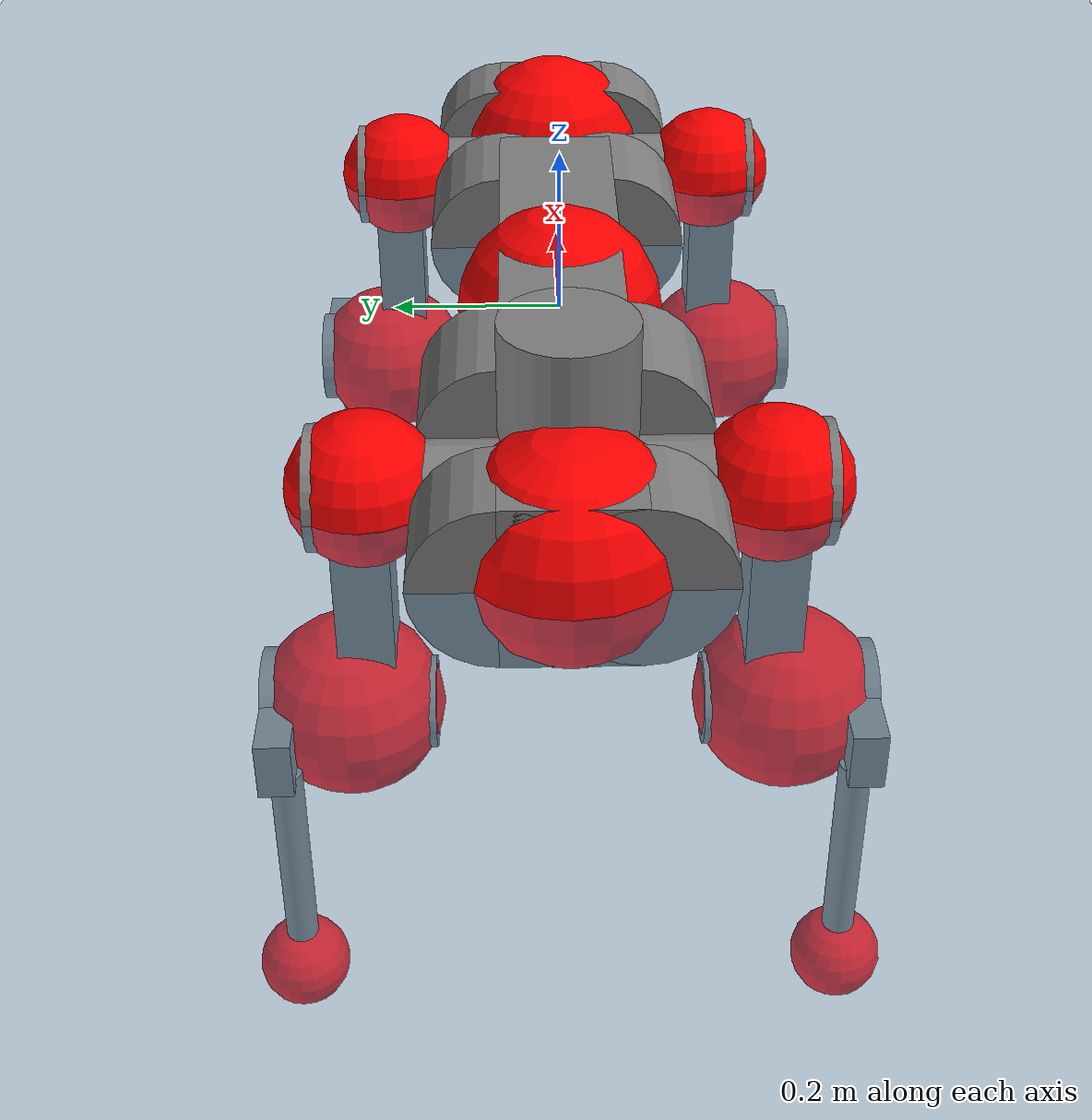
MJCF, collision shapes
<mujoco model="anymal_c">
  <compiler angle="radian" assetdir="assets" balanceinertia="true" inertiafromgeom="false"/>

  <option timestep="0.005" density="1.2" viscosity="2e-05"/>

  <size nkey="1"/>

  <visual>
    <quality shadowsize="8192"/>
    <map shadowclip="0.5"/>
  </visual>

  <default>
    <default class="/">
      <material specular="0" shininess="0.25"/>
      <geom contype="0" conaffinity="0" group="1" solref="-1000 -80"/>
      <site size="0.01 0.005 0.005" group="5"/>
      <general forcelimited="true" forcerange="-80 80" biastype="affine" gainprm="80" biasprm="0 -80 -2"/>
      <default class="anymal_c">
        <joint armature="0.01" damping="0.01" frictionloss="0.1"/>
        <default class="visual">
          <geom type="mesh" group="2"/>
          <default class="visual_zflip"/>
        </default>
        <default class="collision">
          <geom type="cylinder" group="3"/>
          <default class="foot">
            <geom size="0.03 0 0" type="sphere" condim="6" priority="1" friction="0.8 0.02 0.01" solimp="0.015 1 0.03"/>
          </default>
        </default>
      </default>
      <default class="reward_collision_sphere">
        <geom group="5" rgba="1 0 0 1"/>
      </default>
    </default>
  </default>

  <asset>
    <texture type="skybox" colorspace="auto" name="//unnamed_texture_0" builtin="gradient" rgb1="0.95 0.95 0.95" rgb2="0.95 0.95 0.95" width="100" height="600"/>
    <texture type="2d" colorspace="auto" name="texplane" builtin="checker" rgb1="0.345 0.575 0.748" rgb2="0.345 0.575 0.748" markrgb="1 1 1" width="512" height="512"/>
    <texture type="2d" colorspace="linear" name="base" file="base.png"/>
    <texture type="2d" colorspace="linear" name="top_shell" file="top_shell.png"/>
    <texture type="2d" colorspace="linear" name="bottom_shell" file="bottom_shell.png"/>
    <texture type="2d" colorspace="linear" name="remote" file="remote.png"/>
    <texture type="2d" colorspace="linear" name="hatch" file="hatch.png"/>
    <texture type="2d" colorspace="linear" name="handle" file="handle.png"/>
    <texture type="2d" colorspace="linear" name="face" file="face.png"/>
    <texture type="2d" colorspace="linear" name="battery" file="battery.png"/>
    <texture type="2d" colorspace="linear" name="lidar_cage" file="lidar_cage.png"/>
    <texture type="2d" colorspace="linear" name="depth_camera" file="depth_camera.png"/>
    <texture type="2d" colorspace="linear" name="wide_angle_camera" file="wide_angle_camera.png"/>
    <texture type="2d" colorspace="linear" name="lidar" file="lidar.png"/>
    <texture type="2d" colorspace="linear" name="drive" file="drive.png"/>
    <texture type="2d" colorspace="linear" name="hip_l" file="hip_l.png"/>
    <texture type="2d" colorspace="linear" name="shank_l" file="shank_l.png"/>
    <texture type="2d" colorspace="linear" name="foot" file="foot.png"/>
    <texture type="2d" colorspace="linear" name="thigh" file="thigh.png"/>
    <texture type="2d" colorspace="linear" name="shank_r" file="shank_r.png"/>
    <texture type="2d" colorspace="linear" name="hip_r" file="hip_r.png"/>
    <material name="MatPlane" class="/" texture="texplane" texuniform="true" texrepeat="2 2" specular="0.9" shininess="0.5"/>
    <material name="black_plastic" class="/" rgba="0.007 0.007 0.007 1"/>
    <material name="green" class="/" rgba="0.052 0.178 0.033 1"/>
    <material name="red" class="/" rgba="0.178 0.006 0.005 1"/>
    <material name="yellow" class="/" rgba="0.178 0.119 0.006 1"/>
    <material name="lwl" class="/" rgba="0.8 0.8 0.8 1"/>
    <material name="base" class="/" texture="base"/>
    <material name="top_shell" class="/" texture="top_shell"/>
    <material name="bottom_shell" class="/" texture="bottom_shell"/>
    <material name="hip_l" class="/" texture="hip_l"/>
    <material name="thigh" class="/" texture="thigh"/>
    <material name="shank_l" class="/" texture="shank_l"/>
    <material name="foot" class="/" texture="foot"/>
    <material name="hip_r" class="/" texture="hip_r"/>
    <material name="shank" class="/" texture="shank_r"/>
    <material name="hatch" class="/" texture="hatch"/>
    <material name="remote" class="/" texture="remote"/>
    <material name="handle" class="/" texture="handle"/>
    <material name="face" class="/" texture="face"/>
    <material name="depth_camera" class="/" texture="depth_camera"/>
    <material name="wide_angle_camera" class="/" texture="wide_angle_camera"/>
    <material name="battery" class="/" texture="battery"/>
    <material name="lidar_cage" class="/" texture="lidar_cage"/>
    <material name="lidar" class="/" texture="lidar"/>
    <material name="drive" class="/" texture="drive"/>
    <mesh name="base_0" class="/" file="base_0.obj"/>
    <mesh name="base_1" class="/" file="base_1.obj"/>
    <mesh name="base_2" class="/" file="base_2.obj"/>
    <mesh name="base_3" class="/" file="base_3.obj"/>
    <mesh name="base_4" class="/" file="base_4.obj"/>
    <mesh name="base_5" class="/" file="base_5.obj"/>
    <mesh name="top_shell" class="/" file="top_shell.obj"/>
    <mesh name="bottom_shell" class="/" file="bottom_shell.obj"/>
    <mesh name="remote" class="/" file="remote.obj"/>
    <mesh name="handle" class="/" file="handle.obj"/>
    <mesh name="face" class="/" file="face.obj"/>
    <mesh name="wide_angle_camera" class="/" file="wide_angle_camera.obj"/>
    <mesh name="depth_camera" class="/" file="depth_camera.obj"/>
    <mesh name="battery" class="/" file="battery.obj"/>
    <mesh name="lidar_cage" class="/" file="lidar_cage.obj"/>
    <mesh name="lidar" class="/" file="lidar.obj"/>
    <mesh name="drive" class="/" file="drive.obj"/>
    <mesh name="hip_l" class="/" file="hip_l.obj"/>
    <mesh name="thigh" class="/" file="thigh.obj"/>
    <mesh name="shank_l" class="/" file="shank_l.obj"/>
    <mesh name="foot" class="/" file="foot.obj"/>
    <mesh name="hip_r" class="/" file="hip_r.obj"/>
    <mesh name="hatch" class="/" file="hatch.obj"/>
    <mesh name="shank_r" class="/" file="shank_r.obj"/>
  </asset>

  <worldbody>
    <geom name="floor" class="/" size="100 100 0.125" type="plane" group="0" material="MatPlane"/>
    <light name="toplight_shadow" class="/" pos="0 0 5" dir="0.0990148 0.0990148 -0.990148" type="directional" ambient="0.04 0.04 0.04" diffuse="0.55 0.55 0.55" specular="0.12 0.12 0.12"/>
    <light name="toplight_fill" class="/" pos="0 0 5" dir="0.0990148 0.0990148 -0.990148" type="directional" castshadow="false" ambient="0.04 0.04 0.04" diffuse="0.3 0.3 0.3" specular="0.08 0.08 0.08"/>
    <body name="trunk" childclass="anymal_c" pos="0.000970316 -0.000127304 -0.000403081" quat="1 7.24654e-05 -0.000123208 0.000117004">
      <inertial pos="0.000161388 -0.00274242 0.049152" quat="0.498029 0.503736 0.497023 0.501184" mass="22.4552" diaginertia="1.07109 0.610341 0.237448"/>
      <joint name="//unnamed_joint_0" type="free" armature="0" damping="0" frictionloss="0"/>
      <geom name="//unnamed_geom_1" class="visual" material="green" mesh="base_0"/>
      <geom name="//unnamed_geom_2" class="visual" material="yellow" mesh="base_1"/>
      <geom name="//unnamed_geom_3" class="visual" material="red" mesh="base_2"/>
      <geom name="//unnamed_geom_4" class="visual" material="black_plastic" mesh="base_3"/>
      <geom name="//unnamed_geom_5" class="visual" material="lwl" mesh="base_4"/>
      <geom name="//unnamed_geom_6" class="visual" material="base" mesh="base_5"/>
      <geom name="trunk_1" class="collision" size="0.301984 0.0728926 0.0937191" type="box"/>
      <geom name="trunk_2" class="collision" size="0.0937191 0.0754959" pos="0.241063 0.069715 0" quat="0.707107 0 0.707107 0"/>
      <geom name="trunk_3" class="collision" size="0.0937191 0.0754959" pos="-0.241063 0.069715 0" quat="0.707107 0 0.707107 0"/>
      <geom name="trunk_4" class="collision" size="0.0937191 0.0754959" pos="0.241063 -0.069715 0" quat="0.707107 0 0.707107 0"/>
      <geom name="trunk_5" class="collision" size="0.0937191 0.0754959" pos="-0.241063 -0.069715 0" quat="0.707107 0 0.707107 0"/>
      <geom name="//unnamed_geom_12" class="visual" material="top_shell" mesh="top_shell"/>
      <geom name="//unnamed_geom_13" class="visual" material="bottom_shell" mesh="bottom_shell"/>
      <geom name="//unnamed_geom_14" class="visual" material="remote" mesh="remote"/>
      <geom name="//unnamed_geom_15" class="visual" material="handle" mesh="handle"/>
      <geom name="//unnamed_geom_16" class="visual" pos="0.459404 0 0" quat="1 0 0 0" material="face" mesh="face"/>
      <geom name="trunk_6" class="collision" size="0.0572728 0.0728926 0.0937191" pos="0.520363 0 0" type="box"/>
      <geom name="//unnamed_geom_18" class="collision" size="0.0937191 0.0572728" pos="0.520363 0.069715 0" quat="0.707107 0 0.707107 0"/>
      <geom name="//unnamed_geom_19" class="collision" size="0.0937191 0.0572728" pos="0.520363 -0.069715 0" quat="0.707107 0 0.707107 0"/>
      <geom name="//unnamed_geom_20" class="visual" pos="0.511659 0 -0.0291019" quat="0.965926 0 0.258819 0" material="depth_camera" mesh="depth_camera"/>
      <geom name="//unnamed_geom_21" class="visual" pos="0.568575 0 0.015265" material="wide_angle_camera" mesh="wide_angle_camera"/>
      <geom name="//unnamed_geom_22" class="visual_zflip" pos="-0.459404 0 0" quat="0 0 0 1" material="face" mesh="face"/>
      <geom name="trunk_7" class="collision" size="0.0572728 0.0728926 0.0937191" pos="-0.520363 0 0" quat="0 0 0 1" type="box"/>
      <geom name="//unnamed_geom_24" class="collision" size="0.0937191 0.0572728" pos="-0.520363 -0.069715 0" quat="0 -0.707107 0 0.707107"/>
      <geom name="//unnamed_geom_25" class="collision" size="0.0937191 0.0572728" pos="-0.520363 0.069715 0" quat="0 -0.707107 0 0.707107"/>
      <geom name="//unnamed_geom_26" class="visual" pos="-0.511659 0 -0.0291019" quat="0 -0.258819 0 0.965926" material="depth_camera" mesh="depth_camera"/>
      <geom name="//unnamed_geom_27" class="visual_zflip" pos="-0.568575 0 0.015265" quat="0 0 0 1" material="wide_angle_camera" mesh="wide_angle_camera"/>
      <geom name="//unnamed_geom_28" class="visual" material="battery" mesh="battery"/>
      <geom name="//unnamed_geom_29" class="visual" pos="0 0.07467 0.0302961" quat="0.683013 -0.183013 0.183013 0.683013" material="depth_camera" mesh="depth_camera"/>
      <geom name="//unnamed_geom_30" class="visual" pos="0 -0.07467 0.0302961" quat="0.683013 0.183013 0.183013 -0.683013" material="depth_camera" mesh="depth_camera"/>
      <geom name="//unnamed_geom_31" class="visual" pos="-0.403433 0 0.0749485" quat="1 0 0 0" material="lidar_cage" mesh="lidar_cage"/>
      <geom name="trunk_8" class="collision" size="0.0728926 0.0624794" pos="-0.403433 0 0.136131"/>
      <geom name="//unnamed_geom_33" class="visual" pos="-0.403433 -4.41611e-05 0.145002" quat="0.707107 0 0 -0.707107" material="lidar" mesh="lidar"/>
      <geom name="//unnamed_geom_34" class="visual" pos="0.332389 0.103585 -4.10201e-10" quat="0.258819 0.965926 0 0" material="drive" mesh="drive"/>
      <geom name="//unnamed_geom_35" class="visual" pos="0.332389 -0.103585 4.10201e-10" quat="0.258819 -0.965926 0 0" material="drive" mesh="drive"/>
      <geom name="//unnamed_geom_36" class="visual" pos="-0.332389 0.103585 4.10201e-10" quat="0 0 0.965926 -0.258819" material="drive" mesh="drive"/>
      <geom name="//unnamed_geom_37" class="visual" pos="-0.332389 -0.103585 -4.10201e-10" quat="0 0 -0.965926 -0.258819" material="drive" mesh="drive"/>
      <geom name="//unnamed_geom_38" class="visual" pos="0.128567 0 0.0744387" quat="1 0 0 0" material="hatch" mesh="hatch"/>
      <geom name="//unnamed_geom_39" class="reward_collision_sphere" size="0.124959"/>
      <geom name="//unnamed_geom_40" class="reward_collision_sphere" size="0.124959" pos="0.49875 0 0"/>
      <geom name="//unnamed_geom_41" class="reward_collision_sphere" size="0.124959" pos="-0.49875 0 0"/>
      <site name="imu" pos="0.289429 0.00912226 0.0335125" size="0.0104132"/>
      <camera name="track" pos="0 -1.99186 0" quat="0.707107 0.707107 0 0" mode="trackcom"/>
      <camera name="ego_camera" pos="0.49875 0 -0.0407883" quat="-0.5 -0.5 0.5 0.5"/>
      <body name="LF_HIP" pos="0.330581 0.101534 -0.000952288" quat="0.258964 0.965887 0.000345182 -3.14955e-05">
        <inertial pos="0.0628867 -0.0171927 -0.00826362" quat="-0.128734 0.710179 -0.134721 0.678914" mass="3.07449" diaginertia="0.0095132 0.00452082 0.00351868"/>
        <joint name="LF_HAA" pos="0 0 0" axis="0.999996 0.00203657 0.00179523" range="-0.717584 0.491538" armature="0.0107077" damping="0.017727" frictionloss="0.0943122"/>
        <geom name="//unnamed_geom_42" class="visual" pos="0 -2.41303e-05 3.96338e-06" quat="0.258819 -0.965926 0 0" material="hip_l" mesh="hip_l"/>
        <geom name="//unnamed_geom_43" class="visual" pos="0.0663892 -0.0789731 -0.045771" quat="0.183013 -0.683013 0.683013 0.183013" material="drive" mesh="drive"/>
        <geom name="//unnamed_geom_44" class="collision" size="0.0520662 0.0728926" pos="0.0663892 -0.0119111 -0.00704108" quat="-0.353553 -0.612372 0.612372 -0.353553"/>
        <body name="LF_THIGH" pos="0.065658 -0.069727 -0.0420193" quat="0.182043 -0.683751 0.682451 0.183317">
          <inertial pos="0.0347885 8.87624e-05 -0.249393" quat="0.993906 -0.0131476 -0.0718468 0.082563" mass="3.38051" diaginertia="0.0504932 0.0283534 0.00457534"/>
          <joint name="LF_HFE" pos="0 0 0" axis="0.999993 -0.00357876 -0.00141416" stiffness="0.00216747" range="-3.09062 3.17413" armature="0.0109564" damping="0.0202294" frictionloss="0.0977394"/>
          <geom name="//unnamed_geom_45" class="visual" pos="0.00223643 3.52409e-06 0" quat="0.707107 0 0 -0.707107" material="thigh" mesh="thigh"/>
          <geom name="//unnamed_geom_46" class="collision" size="0.067686 0.0416529" pos="0.0443333 0 0" quat="0.5 0.5 -0.5 -0.5"/>
          <geom name="//unnamed_geom_47" class="collision" size="0.0390496 0.0312397 0.147154" pos="0.03325 0 -0.144099" quat="0.707107 0 0 -0.707107" type="box"/>
          <geom name="//unnamed_geom_48" class="visual" pos="0.111166 0 -0.290617" quat="1 0 0 0" material="drive" mesh="drive"/>
          <geom name="//unnamed_geom_49" class="collision" size="0.0520662 0.0728926" pos="0.0335825 0 -0.290617" quat="0.707107 0 0.707107 0"/>
          <geom name="//unnamed_geom_50" class="reward_collision_sphere" size="0.0833059" pos="0.0277083 0 0"/>
          <body name="LF_SHANK" pos="0.111625 0.00251975 -0.290605" quat="1 -0.000236996 -6.89056e-05 -0.000369099">
            <inertial pos="0.00630481 -0.0620842 -0.0828564" quat="0.993044 -0.115189 -0.0022854 -0.0242945" mass="0.670481" diaginertia="0.0166537 0.00913921 0.00123268"/>
            <joint name="LF_KFE" pos="0 0 0" axis="0.999994 -0.00169407 -0.00316521" range="-3.10494 3.13934" armature="0.0101801" damping="0.00879801" frictionloss="0.10527"/>
            <geom name="//unnamed_geom_51" class="visual" pos="0.00072925 0.0038884 0" quat="0.707107 0 0 -0.707107" material="shank_l" mesh="shank_l"/>
            <geom name="LF_kfe_act" class="collision" size="0.0624794 0.0208265" pos="0.0221667 0 0" quat="0.5 0.5 -0.5 -0.5"/>
            <geom name="//unnamed_geom_53" class="collision" size="0.059875 0.0351447 0.0197851" pos="0.0221667 -0.0572649 0" quat="0.5 0.5 -0.5 -0.5" type="box"/>
            <geom name="//unnamed_geom_54" class="visual" pos="0.0144636 -0.0863388 -0.344631" quat="0.382683 0 0 -0.92388" material="foot" mesh="foot"/>
            <geom name="LF_calf" class="collision" size="0.0182232 0.147089" pos="0.0144638 -0.0875919 -0.172315" quat="0.707107 0 0 -0.707107"/>
            <geom name="LF_foot" class="foot" size="0.0307249" pos="0.0144638 -0.0875919 -0.321687" quat="0.707107 0 0 -0.707107"/>
            <geom name="//unnamed_geom_57" class="reward_collision_sphere" size="0.104132" pos="-0.0554167 0 0"/>
            <geom name="//unnamed_geom_58" class="reward_collision_sphere" size="0.0520662" pos="0.0144638 -0.0875919 -0.321687"/>
            <site name="LF_foot" class="foot" pos="0.0144638 -0.0875919 -0.321687" quat="0.707107 0 0 -0.707107" size="0.0104132"/>
          </body>
        </body>
      </body>
      <body name="RF_HIP" pos="0.330131 -0.103866 0.00119058" quat="0.258754 -0.965943 -5.73674e-05 3.07948e-06">
        <inertial pos="0.061322 0.0130721 -0.0103972" quat="0.1407 0.669908 0.127038 0.717835" mass="3.09923" diaginertia="0.00938301 0.00492647 0.00348132"/>
        <joint name="RF_HAA" pos="0 0 0" axis="0.999947 0.0053552 0.00882442" range="-0.509825 0.724005" armature="0.0104208" damping="0" frictionloss="0.102861"/>
        <geom name="//unnamed_geom_59" class="visual" pos="0 2.41301e-05 3.96337e-06" quat="0.258819 0.965926 0 0" material="hip_r" mesh="hip_r"/>
        <geom name="//unnamed_geom_60" class="visual" pos="0.0663892 0.0789731 -0.045771" quat="0.183013 0.683013 0.683013 -0.183013" material="drive" mesh="drive"/>
        <geom name="//unnamed_geom_61" class="collision" size="0.0520662 0.0728926" pos="0.0663892 0.0119111 -0.00704108" quat="-0.353553 0.612372 0.612372 0.353553"/>
        <body name="RF_THIGH" pos="0.0677522 0.0719258 -0.0452717" quat="0.183212 0.682225 0.683618 -0.183489">
          <inertial pos="0.0369572 0.000640342 -0.251364" quat="0.992086 -0.00268363 -0.086902 0.0905857" mass="3.61955" diaginertia="0.050189 0.028711 0.0048333"/>
          <joint name="RF_HFE" pos="0 0 0" axis="0.999999 -0.00158994 0.000612787" range="-3.15129 3.15854" armature="0.00956947" damping="0.011701" frictionloss="0.104914"/>
          <geom name="//unnamed_geom_62" class="visual" pos="0.00223643 3.52409e-06 0" quat="0.707107 0 0 -0.707107" material="thigh" mesh="thigh"/>
          <geom name="//unnamed_geom_63" class="collision" size="0.067686 0.0416529" pos="0.0443333 0 0" quat="0.5 0.5 0.5 0.5"/>
          <geom name="//unnamed_geom_64" class="collision" size="0.0390496 0.0312397 0.147154" pos="0.03325 0 -0.144099" quat="0.707107 0 0 0.707107" type="box"/>
          <geom name="//unnamed_geom_65" class="visual" pos="0.111166 0 -0.290617" quat="1 0 0 0" material="drive" mesh="drive"/>
          <geom name="//unnamed_geom_66" class="collision" size="0.0520662 0.0728926" pos="0.0335825 0 -0.290617" quat="0.707107 0 0.707107 0"/>
          <geom name="//unnamed_geom_67" class="reward_collision_sphere" size="0.0833059" pos="0.0277083 0 0"/>
          <body name="RF_SHANK" pos="0.109478 -0.000263639 -0.290183" quat="1 -0.000242924 0.000486599 0.000282625">
            <inertial pos="0.0039614 0.0609495 -0.0821283" quat="0.994015 0.106249 0.00800124 0.024111" mass="0.696272" diaginertia="0.0175343 0.00927501 0.00126619"/>
            <joint name="RF_KFE" pos="0 0 0" axis="0.999999 -0.00147697 -0.000703982" range="-3.19081 3.10665" armature="0.0118382" damping="0.0228239" frictionloss="0.106225"/>
            <geom name="//unnamed_geom_68" class="visual" pos="0.000729246 -0.00388839 0" quat="0.707107 0 0 0.707107" material="shank" mesh="shank_r"/>
            <geom name="RF_kfe_act" class="collision" size="0.0624794 0.0208265" pos="0.0221667 0 0" quat="0.5 0.5 0.5 0.5"/>
            <geom name="//unnamed_geom_70" class="collision" size="0.059875 0.0351447 0.0197851" pos="0.0221667 0.0572649 0" quat="0.5 0.5 0.5 0.5" type="box"/>
            <geom name="//unnamed_geom_71" class="visual" pos="0.0144639 0.0863388 -0.344631" quat="0.382683 0 0 0.92388" material="foot" mesh="foot"/>
            <geom name="RF_calf" class="collision" size="0.0182232 0.147089" pos="0.0144638 0.0875919 -0.172315" quat="0.707107 0 0 0.707107"/>
            <geom name="RF_foot" class="foot" size="0.0280055" pos="0.0144638 0.0875919 -0.321687" quat="0.707107 0 0 0.707107"/>
            <geom name="//unnamed_geom_74" class="reward_collision_sphere" size="0.104132" pos="-0.0554167 0 0"/>
            <geom name="//unnamed_geom_75" class="reward_collision_sphere" size="0.0520662" pos="0.0144638 0.0875919 -0.321687"/>
            <site name="RF_foot" class="foot" pos="0.0144638 0.0875919 -0.321687" quat="0.707107 0 0 0.707107" size="0.0104132"/>
          </body>
        </body>
      </body>
      <body name="LH_HIP" pos="-0.329068 0.101963 -0.00131982" quat="-0.000143216 3.23805e-05 0.965965 -0.258673">
        <inertial pos="0.0629965 0.0169252 -0.0112147" quat="0.135096 0.673419 0.119363 0.716944" mass="3.25184" diaginertia="0.0104404 0.00505126 0.00370176"/>
        <joint name="LH_HAA" pos="0 0 0" axis="0.999902 0.00175598 0.0138733" range="-0.500336 0.717707" armature="0.0107091" damping="0" frictionloss="0.104893"/>
        <geom name="//unnamed_geom_76" class="visual" pos="0 2.41301e-05 3.96337e-06" quat="-0.258819 -0.965926 0 0" material="hip_r" mesh="hip_r"/>
        <geom name="//unnamed_geom_77" class="visual" pos="0.0663892 0.0789731 -0.045771" quat="0.183013 0.683013 0.683013 -0.183013" material="drive" mesh="drive"/>
        <geom name="//unnamed_geom_78" class="collision" size="0.0520662 0.0728926" pos="0.0663892 0.0119111 -0.00704108" quat="-0.353553 0.612372 0.612372 0.353553"/>
        <body name="LH_THIGH" pos="0.06578 0.0715744 -0.0436119" quat="0.182722 0.683229 0.682904 -0.1829">
          <inertial pos="0.0317007 -0.000639742 -0.253068" quat="0.992773 -0.00519106 -0.080668 0.0886966" mass="3.37412" diaginertia="0.0476664 0.0292572 0.00448017"/>
          <joint name="LH_HFE" pos="0 0 0" axis="1 -0.000149069 -0.000641226" stiffness="0.0101098" range="-3.16039 3.10282" armature="0.00986711" damping="0" frictionloss="0.103303"/>
          <geom name="//unnamed_geom_79" class="visual" pos="0.00223643 3.52409e-06 0" quat="0.707107 0 0 -0.707107" material="thigh" mesh="thigh"/>
          <geom name="//unnamed_geom_80" class="collision" size="0.067686 0.0416529" pos="0.0443333 0 0" quat="0.5 0.5 -0.5 -0.5"/>
          <geom name="//unnamed_geom_81" class="collision" size="0.0390496 0.0312397 0.147154" pos="0.03325 0 -0.144099" quat="0.707107 0 0 -0.707107" type="box"/>
          <geom name="//unnamed_geom_82" class="visual" pos="0.111166 0 -0.290617" quat="1 0 0 0" material="drive" mesh="drive"/>
          <geom name="//unnamed_geom_83" class="collision" size="0.0520662 0.0728926" pos="0.0335825 0 -0.290617" quat="0.707107 0 0.707107 0"/>
          <geom name="//unnamed_geom_84" class="reward_collision_sphere" size="0.0833059" pos="0.0277083 0 0"/>
          <body name="LH_SHANK" pos="0.111183 -0.00142991 -0.289882" quat="1 -0.00015896 -0.000129404 5.30319e-05">
            <inertial pos="0.00691532 0.0636164 -0.0816624" quat="0.993005 0.115389 0.00698962 0.0240447" mass="0.682972" diaginertia="0.0171024 0.00964292 0.00126093"/>
            <joint name="LH_KFE" pos="0 0 0" axis="0.999999 -0.000286309 -0.00157386" range="-3.09186 3.09993" armature="0.0118562" damping="0.0233504" frictionloss="0.0907394"/>
            <geom name="//unnamed_geom_85" class="visual" pos="0.000729246 -0.00388839 0" quat="-0.707107 0 0 -0.707107" material="shank" mesh="shank_r"/>
            <geom name="LH_kfe_act" class="collision" size="0.0624794 0.0208265" pos="0.0221667 0 0" quat="0.5 0.5 -0.5 -0.5"/>
            <geom name="//unnamed_geom_87" class="collision" size="0.059875 0.0351447 0.0197851" pos="0.0221667 0.0572649 0" quat="0.5 0.5 -0.5 -0.5" type="box"/>
            <geom name="//unnamed_geom_88" class="visual" pos="0.0144639 0.0863388 -0.344631" quat="-0.382683 0 0 -0.92388" material="foot" mesh="foot"/>
            <geom name="LH_calf" class="collision" size="0.0182232 0.147089" pos="0.0144638 0.0875919 -0.172315" quat="0.707107 0 0 -0.707107"/>
            <geom name="LH_foot" class="foot" size="0.0331464" pos="0.0144638 0.0875919 -0.321687" quat="0.707107 0 0 -0.707107"/>
            <geom name="//unnamed_geom_91" class="reward_collision_sphere" size="0.104132" pos="-0.0554167 0 0"/>
            <geom name="//unnamed_geom_92" class="reward_collision_sphere" size="0.0520662" pos="0.0144638 0.0875919 -0.321687"/>
            <site name="LH_foot" class="foot" pos="0.0144638 0.0875919 -0.321687" quat="0.707107 0 0 -0.707107" size="0.0104132"/>
          </body>
        </body>
      </body>
      <body name="RH_HIP" pos="-0.329795 -0.104536 0.000848118" quat="0.000101891 4.60629e-05 -0.965912 -0.258872">
        <inertial pos="0.0613677 -0.0143459 -0.011328" quat="-0.138137 0.712561 -0.137855 0.673922" mass="3.1367" diaginertia="0.00948083 0.00467548 0.00350275"/>
        <joint name="RH_HAA" pos="0 0 0" axis="0.999893 0.00768732 0.01247" stiffness="0.000951134" range="-0.777698 0.514149" armature="0.0103473" damping="0.00526847" frictionloss="0.104967"/>
        <geom name="//unnamed_geom_93" class="visual" pos="0 -2.41303e-05 3.96338e-06" quat="-0.258819 0.965926 0 0" material="hip_l" mesh="hip_l"/>
        <geom name="//unnamed_geom_94" class="visual" pos="0.0663892 -0.0789731 -0.045771" quat="-0.183013 0.683013 -0.683013 -0.183013" material="drive" mesh="drive"/>
        <geom name="//unnamed_geom_95" class="collision" size="0.0520662 0.0728926" pos="0.0663892 -0.0119111 -0.00704108" quat="0.353553 0.612372 -0.612372 0.353553"/>
        <body name="RH_THIGH" pos="0.0689242 -0.0719721 -0.0449156" quat="-0.182178 0.683332 -0.68271 -0.183782">
          <inertial pos="0.0348424 0.00123873 -0.251365" quat="0.993181 -0.00492072 -0.0804736 0.0842155" mass="3.29771" diaginertia="0.0481012 0.028691 0.00455509"/>
          <joint name="RH_HFE" pos="0 0 0" axis="0.999982 0.00484143 -0.00364285" stiffness="0.00327111" range="-3.112 3.15973" armature="0.0109343" damping="0.0127484" frictionloss="0.105914"/>
          <geom name="//unnamed_geom_96" class="visual" pos="0.00223643 3.52409e-06 0" quat="0.707107 0 0 -0.707107" material="thigh" mesh="thigh"/>
          <geom name="//unnamed_geom_97" class="collision" size="0.067686 0.0416529" pos="0.0443333 0 0" quat="0.5 0.5 0.5 0.5"/>
          <geom name="//unnamed_geom_98" class="collision" size="0.0390496 0.0312397 0.147154" pos="0.03325 0 -0.144099" quat="0.707107 0 0 0.707107" type="box"/>
          <geom name="//unnamed_geom_99" class="visual" pos="0.111166 0 -0.290617" quat="1 0 0 0" material="drive" mesh="drive"/>
          <geom name="//unnamed_geom_100" class="collision" size="0.0520662 0.0728926" pos="0.0335825 0 -0.290617" quat="0.707107 0 0.707107 0"/>
          <geom name="//unnamed_geom_101" class="reward_collision_sphere" size="0.0833059" pos="0.0277083 0 0"/>
          <body name="RH_SHANK" pos="0.110303 0.00258246 -0.290197" quat="0.999999 -0.00100089 -0.000432582 0.000781771">
            <inertial pos="0.00870452 -0.0611502 -0.0831745" quat="0.994205 -0.105087 -0.0044129 -0.0222412" mass="0.676886" diaginertia="0.0167503 0.00906182 0.00122197"/>
            <joint name="RH_KFE" pos="0 0 0" axis="0.999999 0.000724145 -0.00136077" range="-3.13635 3.1896" armature="0.0104914" damping="0.0231866" frictionloss="0.105935"/>
            <geom name="//unnamed_geom_102" class="visual" pos="0.00072925 0.0038884 0" quat="0.707107 0 0 -0.707107" material="shank_l" mesh="shank_l"/>
            <geom name="RH_kfe_act" class="collision" size="0.0624794 0.0208265" pos="0.0221667 0 0" quat="0.5 0.5 0.5 0.5"/>
            <geom name="//unnamed_geom_104" class="collision" size="0.059875 0.0351447 0.0197851" pos="0.0221667 -0.0572649 0" quat="0.5 0.5 0.5 0.5" type="box"/>
            <geom name="//unnamed_geom_105" class="visual" pos="0.0144636 -0.0863388 -0.344631" quat="0.382683 0 0 -0.92388" material="foot" mesh="foot"/>
            <geom name="RH_calf" class="collision" size="0.0182232 0.147089" pos="0.0144638 -0.0875919 -0.172315" quat="0.707107 0 0 0.707107"/>
            <geom name="RH_foot" class="foot" size="0.0277289" pos="0.0144638 -0.0875919 -0.321687" quat="0.707107 0 0 0.707107"/>
            <geom name="//unnamed_geom_108" class="reward_collision_sphere" size="0.104132" pos="-0.0554167 0 0"/>
            <geom name="//unnamed_geom_109" class="reward_collision_sphere" size="0.0520662" pos="0.0144638 -0.0875919 -0.321687"/>
            <site name="RH_foot" class="foot" pos="0.0144638 -0.0875919 -0.321687" quat="0.707107 0 0 0.707107" size="0.0104132"/>
          </body>
        </body>
      </body>
    </body>
  </worldbody>

  <contact>
    <pair class="/" geom1="floor" geom2="LF_foot" name="//unnamed_contact_0"/>
    <pair class="/" geom1="floor" geom2="RF_foot" name="//unnamed_contact_1"/>
    <pair class="/" geom1="floor" geom2="LH_foot" name="//unnamed_contact_2"/>
    <pair class="/" geom1="floor" geom2="RH_foot" name="//unnamed_contact_3"/>
  </contact>

  <actuator>
    <general name="LF_HAA" class="/" joint="LF_HAA" forcerange="-76.8975 76.8975" gainprm="81.2079" biasprm="0 -81.2079 -2.07795"/>
    <general name="LF_HFE" class="/" joint="LF_HFE" forcerange="-74.7963 74.7963" gainprm="81.2079" biasprm="0 -81.2079 -2.07795"/>
    <general name="LF_KFE" class="/" joint="LF_KFE" forcerange="-85.5944 85.5944" gainprm="81.2079" biasprm="0 -81.2079 -2.07795"/>
    <general name="RF_HAA" class="/" joint="RF_HAA" forcerange="-85.5793 85.5793" gainprm="81.2079" biasprm="0 -81.2079 -2.07795"/>
    <general name="RF_HFE" class="/" joint="RF_HFE" forcerange="-92.0055 92.0055" gainprm="81.2079" biasprm="0 -81.2079 -2.07795"/>
    <general name="RF_KFE" class="/" joint="RF_KFE" forcerange="-86.7138 86.7138" gainprm="81.2079" biasprm="0 -81.2079 -2.07795"/>
    <general name="LH_HAA" class="/" joint="LH_HAA" forcerange="-84.1888 84.1888" gainprm="81.2079" biasprm="0 -81.2079 -2.07795"/>
    <general name="LH_HFE" class="/" joint="LH_HFE" forcerange="-77.1828 77.1828" gainprm="81.2079" biasprm="0 -81.2079 -2.07795"/>
    <general name="LH_KFE" class="/" joint="LH_KFE" forcerange="-84.4334 84.4334" gainprm="81.2079" biasprm="0 -81.2079 -2.07795"/>
    <general name="RH_HAA" class="/" joint="RH_HAA" forcerange="-84.2447 84.2447" gainprm="81.2079" biasprm="0 -81.2079 -2.07795"/>
    <general name="RH_HFE" class="/" joint="RH_HFE" forcerange="-92.2009 92.2009" gainprm="81.2079" biasprm="0 -81.2079 -2.07795"/>
    <general name="RH_KFE" class="/" joint="RH_KFE" forcerange="-80.0378 80.0378" gainprm="81.2079" biasprm="0 -81.2079 -2.07795"/>
  </actuator>

  <sensor>
    <gyro site="imu" name="imu_angular_velocity"/>
    <velocimeter site="imu" name="imu_linear_velocity"/>
    <framelinvel objtype="site" objname="LF_foot" name="LF_foot_global_linear_velocity"/>
    <framelinvel objtype="site" objname="RF_foot" name="RF_foot_global_linear_velocity"/>
    <framelinvel objtype="site" objname="LH_foot" name="LH_foot_global_linear_velocity"/>
    <framelinvel objtype="site" objname="RH_foot" name="RH_foot_global_linear_velocity"/>
  </sensor>

  <keyframe>
    <key name="home" qpos="0 0 0.55 1 0 0 0 0 0.4 -0.8 0 -0.4 0.8 0 -0.4 0.8 0 0.4 -0.8"/>
  </keyframe>
</mujoco>
